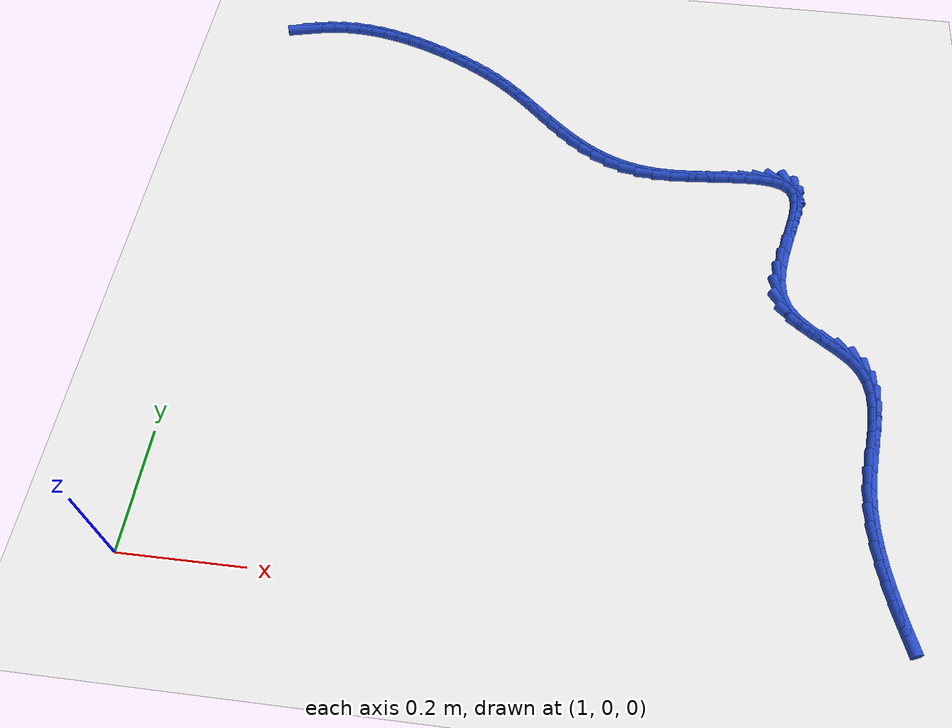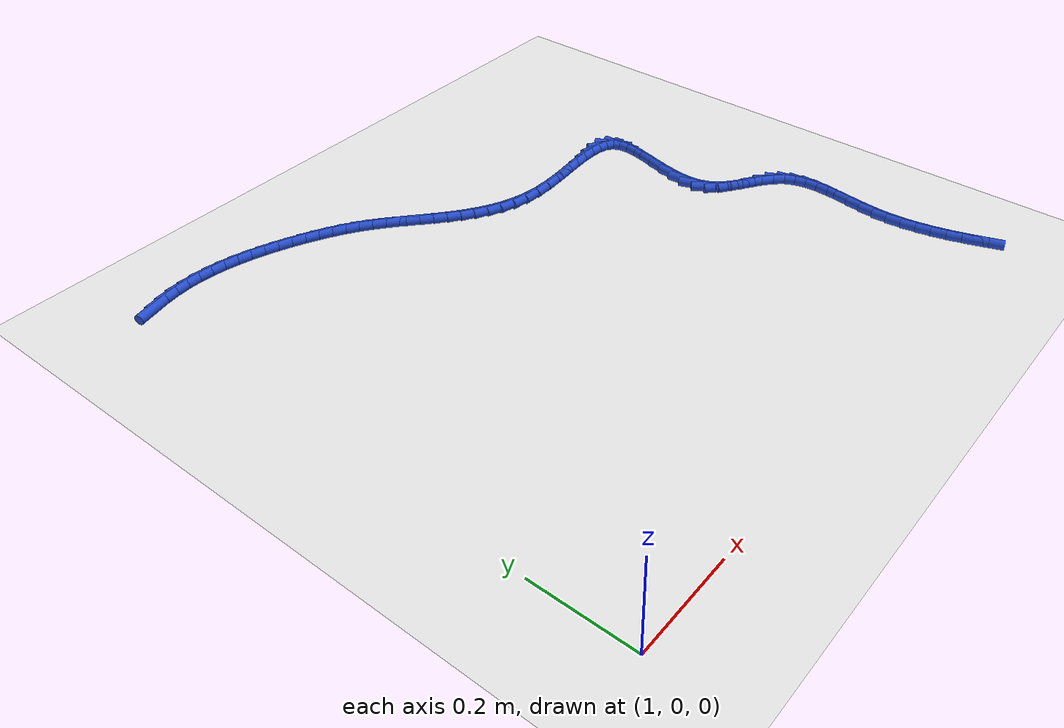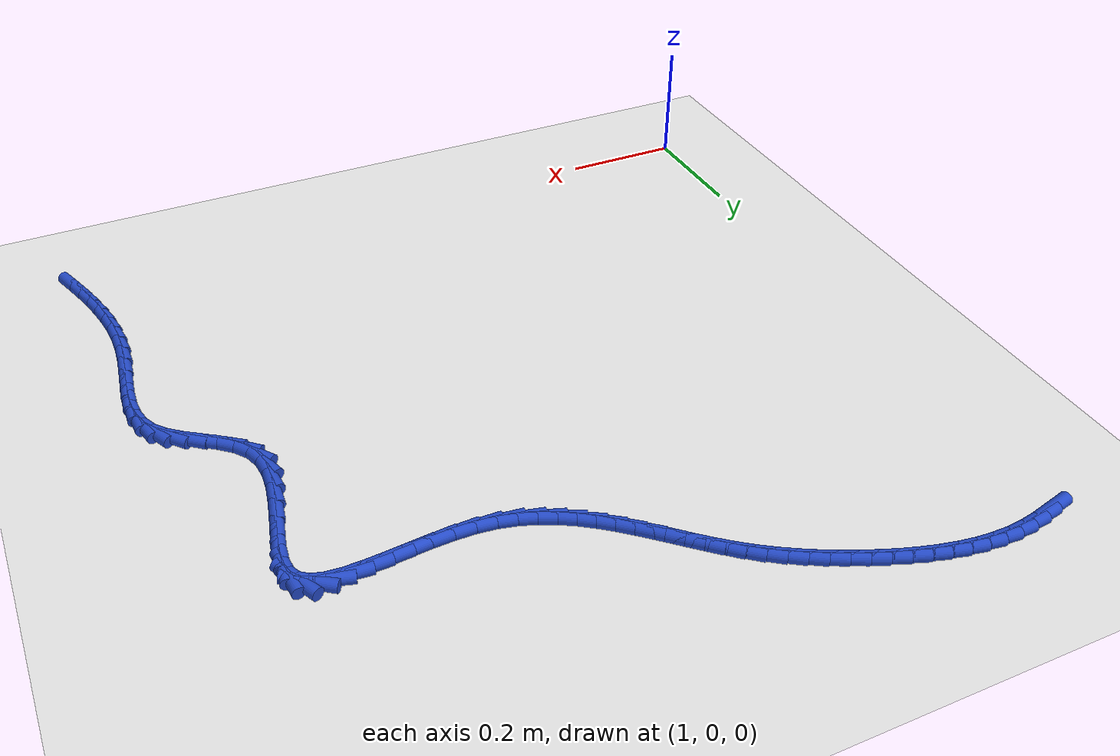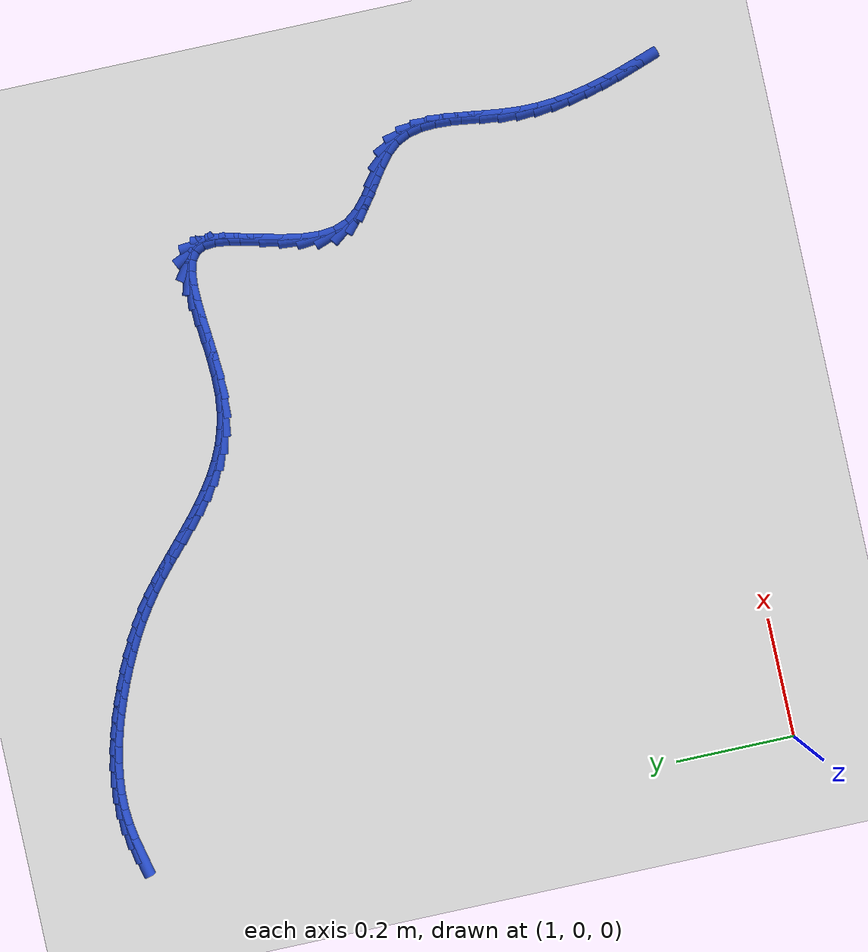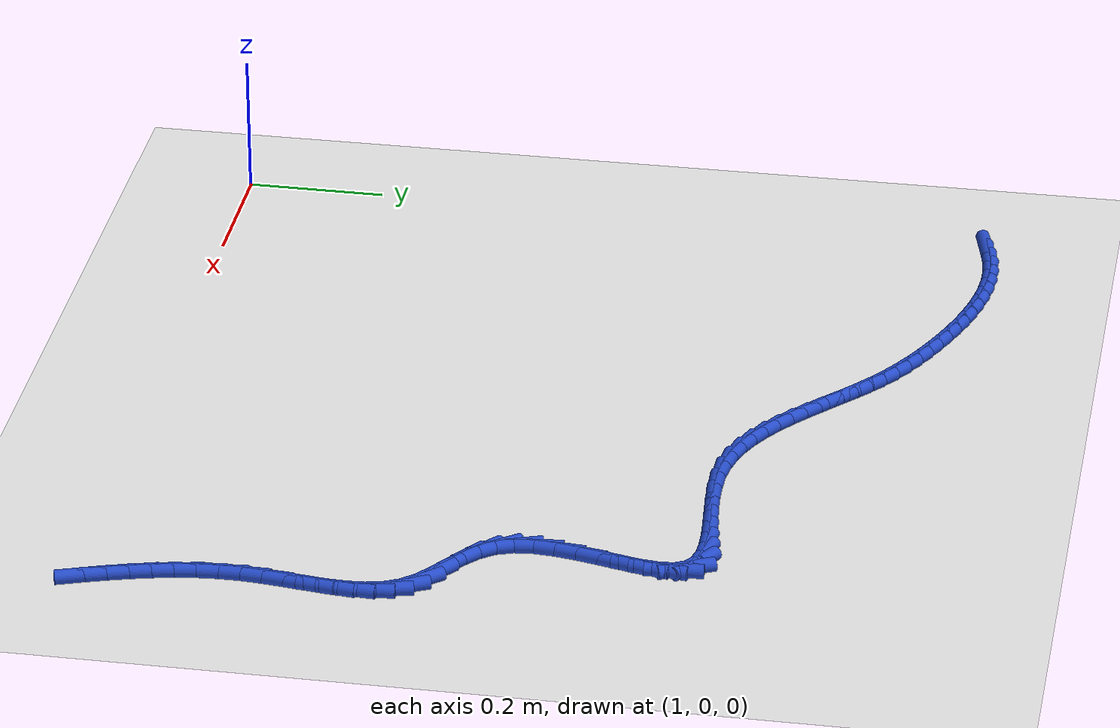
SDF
<sdf version="1.6">
 <world name="default">
  <model name="ground_plane">
   <static>1</static>
   <link name="link">
    <collision name="collision">
     <geometry><plane><normal>0 0 1</normal><size>100 100</size></plane></geometry>
     <surface><friction><ode><mu>100</mu><mu2>50</mu2></ode></friction></surface>
    </collision>
    <visual name="visual">
     <cast_shadows>0</cast_shadows>
     <geometry><plane><normal>0 0 1</normal><size>100 100</size></plane></geometry>
     <material>
      <script><uri>file://media/materials/scripts/gazebo.material</uri><name>Gazebo/WhiteGlow</name></script>
     </material>
    </visual>
   </link>
  </model>
  <model name="line">
   <link name="link_68">
    <pose>1.0432327717322996 1.1049442682885906 0.01 0 1.57 0.2261548790015328</pose>
    <collision name="collision">
     <geometry><cylinder><radius>0.01</radius><length>0.08</length></cylinder></geometry>
    </collision>
    <visual name="visual">
     <material>
      <script><name>Gazebo/Blue</name><uri>file://media/materials/scripts/gazebo.material</uri></script>
     </material>
     <geometry><cylinder><radius>0.01</radius><length>0.08</length></cylinder></geometry>
    </visual>
   </link>
   <link name="link_69">
    <pose>1.0689690765301485 1.1108659621508887 0.01 0 1.57 0.1575142773946039</pose>
    <collision name="collision">
     <geometry><cylinder><radius>0.01</radius><length>0.08</length></cylinder></geometry>
    </collision>
    <visual name="visual">
     <material>
      <script><name>Gazebo/Blue</name><uri>file://media/materials/scripts/gazebo.material</uri></script>
     </material>
     <geometry><cylinder><radius>0.01</radius><length>0.08</length></cylinder></geometry>
    </visual>
   </link>
   <link name="link_70">
    <pose>1.0948690285807112 1.1149796520292168 0.01 0 1.57 0.07598963718641373</pose>
    <collision name="collision">
     <geometry><cylinder><radius>0.01</radius><length>0.08</length></cylinder></geometry>
    </collision>
    <visual name="visual">
     <material>
      <script><name>Gazebo/Blue</name><uri>file://media/materials/scripts/gazebo.material</uri></script>
     </material>
     <geometry><cylinder><radius>0.01</radius><length>0.08</length></cylinder></geometry>
    </visual>
   </link>
   <link name="link_71">
    <pose>1.1209473553737557 1.116965157810721 0.01 0 1.57 -0.008070171331463281</pose>
    <collision name="collision">
     <geometry><cylinder><radius>0.01</radius><length>0.08</length></cylinder></geometry>
    </collision>
    <visual name="visual">
     <material>
      <script><name>Gazebo/Blue</name><uri>file://media/materials/scripts/gazebo.material</uri></script>
     </material>
     <geometry><cylinder><radius>0.01</radius><length>0.08</length></cylinder></geometry>
    </visual>
   </link>
   <link name="link_72">
    <pose>1.1471715131160052 1.1167535197702005 0.01 0 1.57 -0.08456647719099453</pose>
    <collision name="collision">
     <geometry><cylinder><radius>0.01</radius><length>0.08</length></cylinder></geometry>
    </collision>
    <visual name="visual">
     <material>
      <script><name>Gazebo/Blue</name><uri>file://media/materials/scripts/gazebo.material</uri></script>
     </material>
     <geometry><cylinder><radius>0.01</radius><length>0.08</length></cylinder></geometry>
    </visual>
   </link>
   <link name="link_73">
    <pose>1.1734620808788434 1.114524903895849 0.01 0 1.57 -0.1531090605006303</pose>
    <collision name="collision">
     <geometry><cylinder><radius>0.01</radius><length>0.08</length></cylinder></geometry>
    </collision>
    <visual name="visual">
     <material>
      <script><name>Gazebo/Blue</name><uri>file://media/materials/scripts/gazebo.material</uri></script>
     </material>
     <geometry><cylinder><radius>0.01</radius><length>0.08</length></cylinder></geometry>
    </visual>
   </link>
   <link name="link_74">
    <pose>1.199737630180526 1.1104701451960797 0.01 0 1.57 -0.21402265143409852</pose>
    <collision name="collision">
     <geometry><cylinder><radius>0.01</radius><length>0.08</length></cylinder></geometry>
    </collision>
    <visual name="visual">
     <material>
      <script><name>Gazebo/Blue</name><uri>file://media/materials/scripts/gazebo.material</uri></script>
     </material>
     <geometry><cylinder><radius>0.01</radius><length>0.08</length></cylinder></geometry>
    </visual>
   </link>
   <link name="link_75">
    <pose>1.2259167325393108 1.1047800786793065 0.01 0 1.57 -0.2678012517603373</pose>
    <collision name="collision">
     <geometry><cylinder><radius>0.01</radius><length>0.08</length></cylinder></geometry>
    </collision>
    <visual name="visual">
     <material>
      <script><name>Gazebo/Blue</name><uri>file://media/materials/scripts/gazebo.material</uri></script>
     </material>
     <geometry><cylinder><radius>0.01</radius><length>0.08</length></cylinder></geometry>
    </visual>
   </link>
   <link name="link_76">
    <pose>1.2519179594734533 1.097645539353942 0.01 0 1.57 -0.31500652584700173</pose>
    <collision name="collision">
     <geometry><cylinder><radius>0.01</radius><length>0.08</length></cylinder></geometry>
    </collision>
    <visual name="visual">
     <material>
      <script><name>Gazebo/Blue</name><uri>file://media/materials/scripts/gazebo.material</uri></script>
     </material>
     <geometry><cylinder><radius>0.01</radius><length>0.08</length></cylinder></geometry>
    </visual>
   </link>
   <link name="link_77">
    <pose>1.2776598825012115 1.0892573622284003 0.01 0 1.57 -0.3561980112410446</pose>
    <collision name="collision">
     <geometry><cylinder><radius>0.01</radius><length>0.08</length></cylinder></geometry>
    </collision>
    <visual name="visual">
     <material>
      <script><name>Gazebo/Blue</name><uri>file://media/materials/scripts/gazebo.material</uri></script>
     </material>
     <geometry><cylinder><radius>0.01</radius><length>0.08</length></cylinder></geometry>
    </visual>
   </link>
   <link name="link_78">
    <pose>1.3030610731408425 1.0798063823110944 0.01 0 1.57 -0.3918887842243059</pose>
    <collision name="collision">
     <geometry><cylinder><radius>0.01</radius><length>0.08</length></cylinder></geometry>
    </collision>
    <visual name="visual">
     <material>
      <script><name>Gazebo/Blue</name><uri>file://media/materials/scripts/gazebo.material</uri></script>
     </material>
     <geometry><cylinder><radius>0.01</radius><length>0.08</length></cylinder></geometry>
    </visual>
   </link>
   <link name="link_79">
    <pose>1.3280401029106017 1.0694834346104376 0.01 0 1.57 -0.4237235635441797</pose>
    <collision name="collision">
     <geometry><cylinder><radius>0.01</radius><length>0.08</length></cylinder></geometry>
    </collision>
    <visual name="visual">
     <material>
      <script><name>Gazebo/Blue</name><uri>file://media/materials/scripts/gazebo.material</uri></script>
     </material>
     <geometry><cylinder><radius>0.01</radius><length>0.08</length></cylinder></geometry>
    </visual>
   </link>
   <link name="link_80">
    <pose>1.3525200091884317 1.058441867164577 0.01 0 1.57 -0.45790544898363755</pose>
    <collision name="collision">
     <geometry><cylinder><radius>0.01</radius><length>0.08</length></cylinder></geometry>
    </collision>
    <visual name="visual">
     <material>
      <script><name>Gazebo/Blue</name><uri>file://media/materials/scripts/gazebo.material</uri></script>
     </material>
     <geometry><cylinder><radius>0.01</radius><length>0.08</length></cylinder></geometry>
    </visual>
   </link>
   <link name="link_81">
    <pose>1.3764458493057452 1.0466501898395535 0.01 0 1.57 -0.49630766610141563</pose>
    <collision name="collision">
     <geometry><cylinder><radius>0.01</radius><length>0.08</length></cylinder></geometry>
    </collision>
    <visual name="visual">
     <material>
      <script><name>Gazebo/Blue</name><uri>file://media/materials/scripts/gazebo.material</uri></script>
     </material>
     <geometry><cylinder><radius>0.01</radius><length>0.08</length></cylinder></geometry>
    </visual>
   </link>
   <link name="link_82">
    <pose>1.3997694557159543 1.034020041301949 0.01 0 1.57 -0.5388962481352091</pose>
    <collision name="collision">
     <geometry><cylinder><radius>0.01</radius><length>0.08</length></cylinder></geometry>
    </collision>
    <visual name="visual">
     <material>
      <script><name>Gazebo/Blue</name><uri>file://media/materials/scripts/gazebo.material</uri></script>
     </material>
     <geometry><cylinder><radius>0.01</radius><length>0.08</length></cylinder></geometry>
    </visual>
   </link>
   <link name="link_83">
    <pose>1.4224426627364986 1.0204630445714589 0.01 0 1.57 -0.5855557569021723</pose>
    <collision name="collision">
     <geometry><cylinder><radius>0.01</radius><length>0.08</length></cylinder></geometry>
    </collision>
    <visual name="visual">
     <material>
      <script><name>Gazebo/Blue</name><uri>file://media/materials/scripts/gazebo.material</uri></script>
     </material>
     <geometry><cylinder><radius>0.01</radius><length>0.08</length></cylinder></geometry>
    </visual>
   </link>
   <link name="link_84">
    <pose>1.444417304684818 1.0058908226677792 0.01 0 1.57 -0.6360048742836671</pose>
    <collision name="collision">
     <geometry><cylinder><radius>0.01</radius><length>0.08</length></cylinder></geometry>
    </collision>
    <visual name="visual">
     <material>
      <script><name>Gazebo/Blue</name><uri>file://media/materials/scripts/gazebo.material</uri></script>
     </material>
     <geometry><cylinder><radius>0.01</radius><length>0.08</length></cylinder></geometry>
    </visual>
   </link>
   <link name="link_85">
    <pose>1.465646161802005 0.990216445060549 0.01 0 1.57 -0.6836293041387889</pose>
    <collision name="collision">
     <geometry><cylinder><radius>0.01</radius><length>0.08</length></cylinder></geometry>
    </collision>
    <visual name="visual">
     <material>
      <script><name>Gazebo/Blue</name><uri>file://media/materials/scripts/gazebo.material</uri></script>
     </material>
     <geometry><cylinder><radius>0.01</radius><length>0.08</length></cylinder></geometry>
    </visual>
   </link>
   <link name="link_86">
    <pose>1.4861736376796943 0.9734930861739793 0.01 0 1.57 -0.7168880695042084</pose>
    <collision name="collision">
     <geometry><cylinder><radius>0.01</radius><length>0.08</length></cylinder></geometry>
    </collision>
    <visual name="visual">
     <material>
      <script><name>Gazebo/Blue</name><uri>file://media/materials/scripts/gazebo.material</uri></script>
     </material>
     <geometry><cylinder><radius>0.01</radius><length>0.08</length></cylinder></geometry>
    </visual>
   </link>
   <link name="link_87">
    <pose>1.5062109588329686 0.9560290160817231 0.01 0 1.57 -0.7347939902887801</pose>
    <collision name="collision">
     <geometry><cylinder><radius>0.01</radius><length>0.08</length></cylinder></geometry>
    </collision>
    <visual name="visual">
     <material>
      <script><name>Gazebo/Blue</name><uri>file://media/materials/scripts/gazebo.material</uri></script>
     </material>
     <geometry><cylinder><radius>0.01</radius><length>0.08</length></cylinder></geometry>
    </visual>
   </link>
   <link name="link_88">
    <pose>1.52598705241122 0.9381595716100819 0.01 0 1.57 -0.7375537505366774</pose>
    <collision name="collision">
     <geometry><cylinder><radius>0.01</radius><length>0.08</length></cylinder></geometry>
    </collision>
    <visual name="visual">
     <material>
      <script><name>Gazebo/Blue</name><uri>file://media/materials/scripts/gazebo.material</uri></script>
     </material>
     <geometry><cylinder><radius>0.01</radius><length>0.08</length></cylinder></geometry>
    </visual>
   </link>
   <link name="link_89">
    <pose>1.5457308455638414 0.9202200895853582 0.01 0 1.57 -0.7252220394292476</pose>
    <collision name="collision">
     <geometry><cylinder><radius>0.01</radius><length>0.08</length></cylinder></geometry>
    </collision>
    <visual name="visual">
     <material>
      <script><name>Gazebo/Blue</name><uri>file://media/materials/scripts/gazebo.material</uri></script>
     </material>
     <geometry><cylinder><radius>0.01</radius><length>0.08</length></cylinder></geometry>
    </visual>
   </link>
   <link name="link_90">
    <pose>1.565671265440227 0.902545906833854 0.01 0 1.57 -0.6976839249868846</pose>
    <collision name="collision">
     <geometry><cylinder><radius>0.01</radius><length>0.08</length></cylinder></geometry>
    </collision>
    <visual name="visual">
     <material>
      <script><name>Gazebo/Blue</name><uri>file://media/materials/scripts/gazebo.material</uri></script>
     </material>
     <geometry><cylinder><radius>0.01</radius><length>0.08</length></cylinder></geometry>
    </visual>
   </link>
   <link name="link_91">
    <pose>1.5860372391897688 0.8854723601818709 0.01 0 1.57 -0.6547383108199735</pose>
    <collision name="collision">
     <geometry><cylinder><radius>0.01</radius><length>0.08</length></cylinder></geometry>
    </collision>
    <visual name="visual">
     <material>
      <script><name>Gazebo/Blue</name><uri>file://media/materials/scripts/gazebo.material</uri></script>
     </material>
     <geometry><cylinder><radius>0.01</radius><length>0.08</length></cylinder></geometry>
    </visual>
   </link>
   <link name="link_92">
    <pose>1.60705769396186 0.8693347864557113 0.01 0 1.57 -0.5962906777347486</pose>
    <collision name="collision">
     <geometry><cylinder><radius>0.01</radius><length>0.08</length></cylinder></geometry>
    </collision>
    <visual name="visual">
     <material>
      <script><name>Gazebo/Blue</name><uri>file://media/materials/scripts/gazebo.material</uri></script>
     </material>
     <geometry><cylinder><radius>0.01</radius><length>0.08</length></cylinder></geometry>
    </visual>
   </link>
   <link name="link_93">
    <pose>1.6289615569058937 0.8544685224816769 0.01 0 1.57 -0.5226600954902137</pose>
    <collision name="collision">
     <geometry><cylinder><radius>0.01</radius><length>0.08</length></cylinder></geometry>
    </collision>
    <visual name="visual">
     <material>
      <script><name>Gazebo/Blue</name><uri>file://media/materials/scripts/gazebo.material</uri></script>
     </material>
     <geometry><cylinder><radius>0.01</radius><length>0.08</length></cylinder></geometry>
    </visual>
   </link>
   <link name="link_94">
    <pose>1.6519777551712624 0.8412089050860702 0.01 0 1.57 -0.43496782800211964</pose>
    <collision name="collision">
     <geometry><cylinder><radius>0.01</radius><length>0.08</length></cylinder></geometry>
    </collision>
    <visual name="visual">
     <material>
      <script><name>Gazebo/Blue</name><uri>file://media/materials/scripts/gazebo.material</uri></script>
     </material>
     <geometry><cylinder><radius>0.01</radius><length>0.08</length></cylinder></geometry>
    </visual>
   </link>
   <link name="link_95">
    <pose>1.6763352159073603 0.8298912710951926 0.01 0 1.57 -0.33549359664033657</pose>
    <collision name="collision">
     <geometry><cylinder><radius>0.01</radius><length>0.08</length></cylinder></geometry>
    </collision>
    <visual name="visual">
     <material>
      <script><name>Gazebo/Blue</name><uri>file://media/materials/scripts/gazebo.material</uri></script>
     </material>
     <geometry><cylinder><radius>0.01</radius><length>0.08</length></cylinder></geometry>
    </visual>
   </link>
   <link name="link_96">
    <pose>1.702262866263579 0.8208509573353464 0.01 0 1.57 -0.22779754367410868</pose>
    <collision name="collision">
     <geometry><cylinder><radius>0.01</radius><length>0.08</length></cylinder></geometry>
    </collision>
    <visual name="visual">
     <material>
      <script><name>Gazebo/Blue</name><uri>file://media/materials/scripts/gazebo.material</uri></script>
     </material>
     <geometry><cylinder><radius>0.01</radius><length>0.08</length></cylinder></geometry>
    </visual>
   </link>
   <link name="link_97">
    <pose>1.7299896333893128 0.8144233006328339 0.01 0 1.57 -0.1165066657625365</pose>
    <collision name="collision">
     <geometry><cylinder><radius>0.01</radius><length>0.08</length></cylinder></geometry>
    </collision>
    <visual name="visual">
     <material>
      <script><name>Gazebo/Blue</name><uri>file://media/materials/scripts/gazebo.material</uri></script>
     </material>
     <geometry><cylinder><radius>0.01</radius><length>0.08</length></cylinder></geometry>
    </visual>
   </link>
   <link name="link_98">
    <pose>1.7597421535192113 0.8109411641603814 0.01 0 1.57 -0.018425419173298412</pose>
    <collision name="collision">
     <geometry><cylinder><radius>0.01</radius><length>0.08</length></cylinder></geometry>
    </collision>
    <visual name="visual">
     <material>
      <script><name>Gazebo/Blue</name><uri>file://media/materials/scripts/gazebo.material</uri></script>
     </material>
     <geometry><cylinder><radius>0.01</radius><length>0.08</length></cylinder></geometry>
    </visual>
   </link>
   <link name="link_99">
    <pose>1.7913955608280074 0.8103578708523641 0.01 0 1.57 0.045350305094483956</pose>
    <collision name="collision">
     <geometry><cylinder><radius>0.01</radius><length>0.08</length></cylinder></geometry>
    </collision>
    <visual name="visual">
     <material>
      <script><name>Gazebo/Blue</name><uri>file://media/materials/scripts/gazebo.material</uri></script>
     </material>
     <geometry><cylinder><radius>0.01</radius><length>0.08</length></cylinder></geometry>
    </visual>
   </link>
   <link name="link_100">
    <pose>1.8240981831408996 0.8118419623101532 0.01 0 1.57 0.07976976744193887</pose>
    <collision name="collision">
     <geometry><cylinder><radius>0.01</radius><length>0.08</length></cylinder></geometry>
    </collision>
    <visual name="visual">
     <material>
      <script><name>Gazebo/Blue</name><uri>file://media/materials/scripts/gazebo.material</uri></script>
     </material>
     <geometry><cylinder><radius>0.01</radius><length>0.08</length></cylinder></geometry>
    </visual>
   </link>
   <link name="link_101">
    <pose>1.856908334268205 0.8144647859944336 0.01 0 1.57 0.08836398537260602</pose>
    <collision name="collision">
     <geometry><cylinder><radius>0.01</radius><length>0.08</length></cylinder></geometry>
    </collision>
    <visual name="visual">
     <material>
      <script><name>Gazebo/Blue</name><uri>file://media/materials/scripts/gazebo.material</uri></script>
     </material>
     <geometry><cylinder><radius>0.01</radius><length>0.08</length></cylinder></geometry>
    </visual>
   </link>
   <link name="link_102">
    <pose>1.8888843280202412 0.8172976893658912 0.01 0 1.57 0.06989654613860154</pose>
    <collision name="collision">
     <geometry><cylinder><radius>0.01</radius><length>0.08</length></cylinder></geometry>
    </collision>
    <visual name="visual">
     <material>
      <script><name>Gazebo/Blue</name><uri>file://media/materials/scripts/gazebo.material</uri></script>
     </material>
     <geometry><cylinder><radius>0.01</radius><length>0.08</length></cylinder></geometry>
    </visual>
   </link>
   <link name="link_103">
    <pose>1.919084478207325 0.81941201988521 0.01 0 1.57 0.016994746121917655</pose>
    <collision name="collision">
     <geometry><cylinder><radius>0.01</radius><length>0.08</length></cylinder></geometry>
    </collision>
    <visual name="visual">
     <material>
      <script><name>Gazebo/Blue</name><uri>file://media/materials/scripts/gazebo.material</uri></script>
     </material>
     <geometry><cylinder><radius>0.01</radius><length>0.08</length></cylinder></geometry>
    </visual>
   </link>
   <link name="link_104">
    <pose>1.9465670986397743 0.8198791250130754 0.01 0 1.57 -0.0882867507937313</pose>
    <collision name="collision">
     <geometry><cylinder><radius>0.01</radius><length>0.08</length></cylinder></geometry>
    </collision>
    <visual name="visual">
     <material>
      <script><name>Gazebo/Blue</name><uri>file://media/materials/scripts/gazebo.material</uri></script>
     </material>
     <geometry><cylinder><radius>0.01</radius><length>0.08</length></cylinder></geometry>
    </visual>
   </link>
   <link name="link_105">
    <pose>1.970390503127905 0.8177703522101727 0.01 0 1.57 -0.2841172241631059</pose>
    <collision name="collision">
     <geometry><cylinder><radius>0.01</radius><length>0.08</length></cylinder></geometry>
    </collision>
    <visual name="visual">
     <material>
      <script><name>Gazebo/Blue</name><uri>file://media/materials/scripts/gazebo.material</uri></script>
     </material>
     <geometry><cylinder><radius>0.01</radius><length>0.08</length></cylinder></geometry>
    </visual>
   </link>
   <link name="link_106">
    <pose>1.9896130054820353 0.8121570489371865 0.01 0 1.57 -0.6334401017498593</pose>
    <collision name="collision">
     <geometry><cylinder><radius>0.01</radius><length>0.08</length></cylinder></geometry>
    </collision>
    <visual name="visual">
     <material>
      <script><name>Gazebo/Blue</name><uri>file://media/materials/scripts/gazebo.material</uri></script>
     </material>
     <geometry><cylinder><radius>0.01</radius><length>0.08</length></cylinder></geometry>
    </visual>
   </link>
   <link name="link_107">
    <pose>2.0032929195124822 0.8021105626548025 0.01 0 1.57 -1.1269224054022695</pose>
    <collision name="collision">
     <geometry><cylinder><radius>0.01</radius><length>0.08</length></cylinder></geometry>
    </collision>
    <visual name="visual">
     <material>
      <script><name>Gazebo/Blue</name><uri>file://media/materials/scripts/gazebo.material</uri></script>
     </material>
     <geometry><cylinder><radius>0.01</radius><length>0.08</length></cylinder></geometry>
    </visual>
   </link>
   <link name="link_108">
    <pose>2.010583846901658 0.7867780821630986 0.01 0 1.57 -1.502285695612443</pose>
    <collision name="collision">
     <geometry><cylinder><radius>0.01</radius><length>0.08</length></cylinder></geometry>
    </collision>
    <visual name="visual">
     <material>
      <script><name>Gazebo/Blue</name><uri>file://media/materials/scripts/gazebo.material</uri></script>
     </material>
     <geometry><cylinder><radius>0.01</radius><length>0.08</length></cylinder></geometry>
    </visual>
   </link>
   <link name="link_109">
    <pose>2.0119837431061485 0.7663767917254727 0.01 0 1.57 1.4488258990602418</pose>
    <collision name="collision">
     <geometry><cylinder><radius>0.01</radius><length>0.08</length></cylinder></geometry>
    </collision>
    <visual name="visual">
     <material>
      <script><name>Gazebo/Blue</name><uri>file://media/materials/scripts/gazebo.material</uri></script>
     </material>
     <geometry><cylinder><radius>0.01</radius><length>0.08</length></cylinder></geometry>
    </visual>
   </link>
   <link name="link_110">
    <pose>2.008985319800434 0.7419156200558595 0.01 0 1.57 1.3600790053594278</pose>
    <collision name="collision">
     <geometry><cylinder><radius>0.01</radius><length>0.08</length></cylinder></geometry>
    </collision>
    <visual name="visual">
     <material>
      <script><name>Gazebo/Blue</name><uri>file://media/materials/scripts/gazebo.material</uri></script>
     </material>
     <geometry><cylinder><radius>0.01</radius><length>0.08</length></cylinder></geometry>
    </visual>
   </link>
   <link name="link_111">
    <pose>2.003104662900776 0.7144220998496332 0.01 0 1.57 1.3298987423440372</pose>
    <collision name="collision">
     <geometry><cylinder><radius>0.01</radius><length>0.08</length></cylinder></geometry>
    </collision>
    <visual name="visual">
     <material>
      <script><name>Gazebo/Blue</name><uri>file://media/materials/scripts/gazebo.material</uri></script>
     </material>
     <geometry><cylinder><radius>0.01</radius><length>0.08</length></cylinder></geometry>
    </visual>
   </link>
   <link name="link_112">
    <pose>1.9958578583234365 0.6849237638021687 0.01 0 1.57 1.3420035715239007</pose>
    <collision name="collision">
     <geometry><cylinder><radius>0.01</radius><length>0.08</length></cylinder></geometry>
    </collision>
    <visual name="visual">
     <material>
      <script><name>Gazebo/Blue</name><uri>file://media/materials/scripts/gazebo.material</uri></script>
     </material>
     <geometry><cylinder><radius>0.01</radius><length>0.08</length></cylinder></geometry>
    </visual>
   </link>
   <link name="link_113">
    <pose>1.9887609919846778 0.6544481446088402 0.01 0 1.57 1.3941594416268135</pose>
    <collision name="collision">
     <geometry><cylinder><radius>0.01</radius><length>0.08</length></cylinder></geometry>
    </collision>
    <visual name="visual">
     <material>
      <script><name>Gazebo/Blue</name><uri>file://media/materials/scripts/gazebo.material</uri></script>
     </material>
     <geometry><cylinder><radius>0.01</radius><length>0.08</length></cylinder></geometry>
    </visual>
   </link>
   <link name="link_114">
    <pose>1.9833301498007618 0.6240227749650235 0.01 0 1.57 1.4943216727017263</pose>
    <collision name="collision">
     <geometry><cylinder><radius>0.01</radius><length>0.08</length></cylinder></geometry>
    </collision>
    <visual name="visual">
     <material>
      <script><name>Gazebo/Blue</name><uri>file://media/materials/scripts/gazebo.material</uri></script>
     </material>
     <geometry><cylinder><radius>0.01</radius><length>0.08</length></cylinder></geometry>
    </visual>
   </link>
   <link name="link_115">
    <pose>1.9810814176879508 0.5946751875660928 0.01 0 1.57 -1.4811233825588872</pose>
    <collision name="collision">
     <geometry><cylinder><radius>0.01</radius><length>0.08</length></cylinder></geometry>
    </collision>
    <visual name="visual">
     <material>
      <script><name>Gazebo/Blue</name><uri>file://media/materials/scripts/gazebo.material</uri></script>
     </material>
     <geometry><cylinder><radius>0.01</radius><length>0.08</length></cylinder></geometry>
    </visual>
   </link>
   <link name="link_116">
    <pose>1.9835308815625061 0.5674329151074227 0.01 0 1.57 -1.2258770690438507</pose>
    <collision name="collision">
     <geometry><cylinder><radius>0.01</radius><length>0.08</length></cylinder></geometry>
    </collision>
    <visual name="visual">
     <material>
      <script><name>Gazebo/Blue</name><uri>file://media/materials/scripts/gazebo.material</uri></script>
     </material>
     <geometry><cylinder><radius>0.01</radius><length>0.08</length></cylinder></geometry>
    </visual>
   </link>
   <link name="link_117">
    <pose>1.9921932310995623 0.5433227046768011 0.01 0 1.57 -0.9240070158408307</pose>
    <collision name="collision">
     <geometry><cylinder><radius>0.01</radius><length>0.08</length></cylinder></geometry>
    </collision>
    <visual name="visual">
     <material>
      <script><name>Gazebo/Blue</name><uri>file://media/materials/scripts/gazebo.material</uri></script>
     </material>
     <geometry><cylinder><radius>0.01</radius><length>0.08</length></cylinder></geometry>
    </visual>
   </link>
   <link name="link_118">
    <pose>2.0076542341570356 0.5228486371745797 0.01 0 1.57 -0.7185624377794303</pose>
    <collision name="collision">
     <geometry><cylinder><radius>0.01</radius><length>0.08</length></cylinder></geometry>
    </collision>
    <visual name="visual">
     <material>
      <script><name>Gazebo/Blue</name><uri>file://media/materials/scripts/gazebo.material</uri></script>
     </material>
     <geometry><cylinder><radius>0.01</radius><length>0.08</length></cylinder></geometry>
    </visual>
   </link>
   <link name="link_119">
    <pose>2.0279633751457826 0.5050877308840367 0.01 0 1.57 -0.6185655018415627</pose>
    <collision name="collision">
     <geometry><cylinder><radius>0.01</radius><length>0.08</length></cylinder></geometry>
    </collision>
    <visual name="visual">
     <material>
      <script><name>Gazebo/Blue</name><uri>file://media/materials/scripts/gazebo.material</uri></script>
     </material>
     <geometry><cylinder><radius>0.01</radius><length>0.08</length></cylinder></geometry>
    </visual>
   </link>
   <link name="link_120">
    <pose>2.050741244009368 0.488875682771761 0.01 0 1.57 -0.6054371600381135</pose>
    <collision name="collision">
     <geometry><cylinder><radius>0.01</radius><length>0.08</length></cylinder></geometry>
    </collision>
    <visual name="visual">
     <material>
      <script><name>Gazebo/Blue</name><uri>file://media/materials/scripts/gazebo.material</uri></script>
     </material>
     <geometry><cylinder><radius>0.01</radius><length>0.08</length></cylinder></geometry>
    </visual>
   </link>
   <link name="link_121">
    <pose>2.073608430691356 0.47304818980434155 0.01 0 1.57 -0.6790395834957785</pose>
    <collision name="collision">
     <geometry><cylinder><radius>0.01</radius><length>0.08</length></cylinder></geometry>
    </collision>
    <visual name="visual">
     <material>
      <script><name>Gazebo/Blue</name><uri>file://media/materials/scripts/gazebo.material</uri></script>
     </material>
     <geometry><cylinder><radius>0.01</radius><length>0.08</length></cylinder></geometry>
    </visual>
   </link>
   <link name="link_122">
    <pose>2.0941855251353116 0.45644094894836706 0.01 0 1.57 -0.8610853074563054</pose>
    <collision name="collision">
     <geometry><cylinder><radius>0.01</radius><length>0.08</length></cylinder></geometry>
    </collision>
    <visual name="visual">
     <material>
      <script><name>Gazebo/Blue</name><uri>file://media/materials/scripts/gazebo.material</uri></script>
     </material>
     <geometry><cylinder><radius>0.01</radius><length>0.08</length></cylinder></geometry>
    </visual>
   </link>
   <link name="link_123">
    <pose>2.1101137622534036 0.43789874963618225 0.01 0 1.57 -1.1209060000836266</pose>
    <collision name="collision">
     <geometry><cylinder><radius>0.01</radius><length>0.08</length></cylinder></geometry>
    </collision>
    <visual name="visual">
     <material>
      <script><name>Gazebo/Blue</name><uri>file://media/materials/scripts/gazebo.material</uri></script>
     </material>
     <geometry><cylinder><radius>0.01</radius><length>0.08</length></cylinder></geometry>
    </visual>
   </link>
   <link name="link_124">
    <pose>2.1202928084602606 0.4168206202316733 0.01 0 1.57 -1.3479512414245225</pose>
    <collision name="collision">
     <geometry><cylinder><radius>0.01</radius><length>0.08</length></cylinder></geometry>
    </collision>
    <visual name="visual">
     <material>
      <script><name>Gazebo/Blue</name><uri>file://media/materials/scripts/gazebo.material</uri></script>
     </material>
     <geometry><cylinder><radius>0.01</radius><length>0.08</length></cylinder></geometry>
    </visual>
   </link>
   <link name="link_125">
    <pose>2.125584331110674 0.3934696943779045 0.01 0 1.57 -1.51407470901087</pose>
    <collision name="collision">
     <geometry><cylinder><radius>0.01</radius><length>0.08</length></cylinder></geometry>
    </collision>
    <visual name="visual">
     <material>
      <script><name>Gazebo/Blue</name><uri>file://media/materials/scripts/gazebo.material</uri></script>
     </material>
     <geometry><cylinder><radius>0.01</radius><length>0.08</length></cylinder></geometry>
    </visual>
   </link>
   <link name="link_126">
    <pose>2.127020115093317 0.3681840289537557 0.01 0 1.57 1.519203442008542</pose>
    <collision name="collision">
     <geometry><cylinder><radius>0.01</radius><length>0.08</length></cylinder></geometry>
    </collision>
    <visual name="visual">
     <material>
      <script><name>Gazebo/Blue</name><uri>file://media/materials/scripts/gazebo.material</uri></script>
     </material>
     <geometry><cylinder><radius>0.01</radius><length>0.08</length></cylinder></geometry>
    </visual>
   </link>
   <link name="link_127">
    <pose>2.125631945296867 0.34130168083810797 0.01 0 1.57 1.4582593030475366</pose>
    <collision name="collision">
     <geometry><cylinder><radius>0.01</radius><length>0.08</length></cylinder></geometry>
    </collision>
    <visual name="visual">
     <material>
      <script><name>Gazebo/Blue</name><uri>file://media/materials/scripts/gazebo.material</uri></script>
     </material>
     <geometry><cylinder><radius>0.01</radius><length>0.08</length></cylinder></geometry>
    </visual>
   </link>
   <link name="link_128">
    <pose>2.1224516066099963 0.3131607069098414 0.01 0 1.57 1.4360191460928728</pose>
    <collision name="collision">
     <geometry><cylinder><radius>0.01</radius><length>0.08</length></cylinder></geometry>
    </collision>
    <visual name="visual">
     <material>
      <script><name>Gazebo/Blue</name><uri>file://media/materials/scripts/gazebo.material</uri></script>
     </material>
     <geometry><cylinder><radius>0.01</radius><length>0.08</length></cylinder></geometry>
    </visual>
   </link>
   <link name="link_129">
    <pose>2.118510883921382 0.28409916404783614 0.01 0 1.57 1.4476433845983878</pose>
    <collision name="collision">
     <geometry><cylinder><radius>0.01</radius><length>0.08</length></cylinder></geometry>
    </collision>
    <visual name="visual">
     <material>
      <script><name>Gazebo/Blue</name><uri>file://media/materials/scripts/gazebo.material</uri></script>
     </material>
     <geometry><cylinder><radius>0.01</radius><length>0.08</length></cylinder></geometry>
    </visual>
   </link>
   <link name="link_130">
    <pose>2.114841562119698 0.25445510913097247 0.01 0 1.57 1.4917956828171586</pose>
    <collision name="collision">
     <geometry><cylinder><radius>0.01</radius><length>0.08</length></cylinder></geometry>
    </collision>
    <visual name="visual">
     <material>
      <script><name>Gazebo/Blue</name><uri>file://media/materials/scripts/gazebo.material</uri></script>
     </material>
     <geometry><cylinder><radius>0.01</radius><length>0.08</length></cylinder></geometry>
    </visual>
   </link>
   <link name="link_131">
    <pose>2.1124754260936203 0.22456659903813037 0.01 0 1.57 1.5661531693900108</pose>
    <collision name="collision">
     <geometry><cylinder><radius>0.01</radius><length>0.08</length></cylinder></geometry>
    </collision>
    <visual name="visual">
     <material>
      <script><name>Gazebo/Blue</name><uri>file://media/materials/scripts/gazebo.material</uri></script>
     </material>
     <geometry><cylinder><radius>0.01</radius><length>0.08</length></cylinder></geometry>
    </visual>
   </link>
   <link name="link_132">
    <pose>2.1123369678778197 0.19474697227925367 0.01 0 1.57 -1.4973523462972902</pose>
    <collision name="collision">
     <geometry><cylinder><radius>0.01</radius><length>0.08</length></cylinder></geometry>
    </collision>
    <visual name="visual">
     <material>
      <script><name>Gazebo/Blue</name><uri>file://media/materials/scripts/gazebo.material</uri></script>
     </material>
     <geometry><cylinder><radius>0.01</radius><length>0.08</length></cylinder></geometry>
    </visual>
   </link>
   <link name="link_133">
    <pose>2.1145169952781067 0.16511750131722475 0.01 0 1.57 -1.4289667643049744</pose>
    <collision name="collision">
     <geometry><cylinder><radius>0.01</radius><length>0.08</length></cylinder></geometry>
    </collision>
    <visual name="visual">
     <material>
      <script><name>Gazebo/Blue</name><uri>file://media/materials/scripts/gazebo.material</uri></script>
     </material>
     <geometry><cylinder><radius>0.01</radius><length>0.08</length></cylinder></geometry>
    </visual>
   </link>
   <link name="link_134">
    <pose>2.1187161043533265 0.135709560755327 0.01 0 1.57 -1.370584165908586</pose>
    <collision name="collision">
     <geometry><cylinder><radius>0.01</radius><length>0.08</length></cylinder></geometry>
    </collision>
    <visual name="visual">
     <material>
      <script><name>Gazebo/Blue</name><uri>file://media/materials/scripts/gazebo.material</uri></script>
     </material>
     <geometry><cylinder><radius>0.01</radius><length>0.08</length></cylinder></geometry>
    </visual>
   </link>
   <link name="link_135">
    <pose>2.124632666654369 0.10655401270969993 0.01 0 1.57 -1.3220947604369342</pose>
    <collision name="collision">
     <geometry><cylinder><radius>0.01</radius><length>0.08</length></cylinder></geometry>
    </collision>
    <visual name="visual">
     <material>
      <script><name>Gazebo/Blue</name><uri>file://media/materials/scripts/gazebo.material</uri></script>
     </material>
     <geometry><cylinder><radius>0.01</radius><length>0.08</length></cylinder></geometry>
    </visual>
   </link>
   <link name="link_136">
    <pose>2.1319650537321264 0.07768171929648418 0.01 0 1.57 -1.283226975887592</pose>
    <collision name="collision">
     <geometry><cylinder><radius>0.01</radius><length>0.08</length></cylinder></geometry>
    </collision>
    <visual name="visual">
     <material>
      <script><name>Gazebo/Blue</name><uri>file://media/materials/scripts/gazebo.material</uri></script>
     </material>
     <geometry><cylinder><radius>0.01</radius><length>0.08</length></cylinder></geometry>
    </visual>
   </link>
   <link name="link_137">
    <pose>2.1404116371374884 0.04912354263181904 0.01 0 1.57 -1.2536863117580395</pose>
    <collision name="collision">
     <geometry><cylinder><radius>0.01</radius><length>0.08</length></cylinder></geometry>
    </collision>
    <visual name="visual">
     <material>
      <script><name>Gazebo/Blue</name><uri>file://media/materials/scripts/gazebo.material</uri></script>
     </material>
     <geometry><cylinder><radius>0.01</radius><length>0.08</length></cylinder></geometry>
    </visual>
   </link>
   <link name="link_138">
    <pose>2.149670788421346 0.020910344831844323 0.01 0 1.57 -1.2332571916987514</pose>
    <collision name="collision">
     <geometry><cylinder><radius>0.01</radius><length>0.08</length></cylinder></geometry>
    </collision>
    <visual name="visual">
     <material>
      <script><name>Gazebo/Blue</name><uri>file://media/materials/scripts/gazebo.material</uri></script>
     </material>
     <geometry><cylinder><radius>0.01</radius><length>0.08</length></cylinder></geometry>
    </visual>
   </link>
  </model>
 </world>
</sdf>
